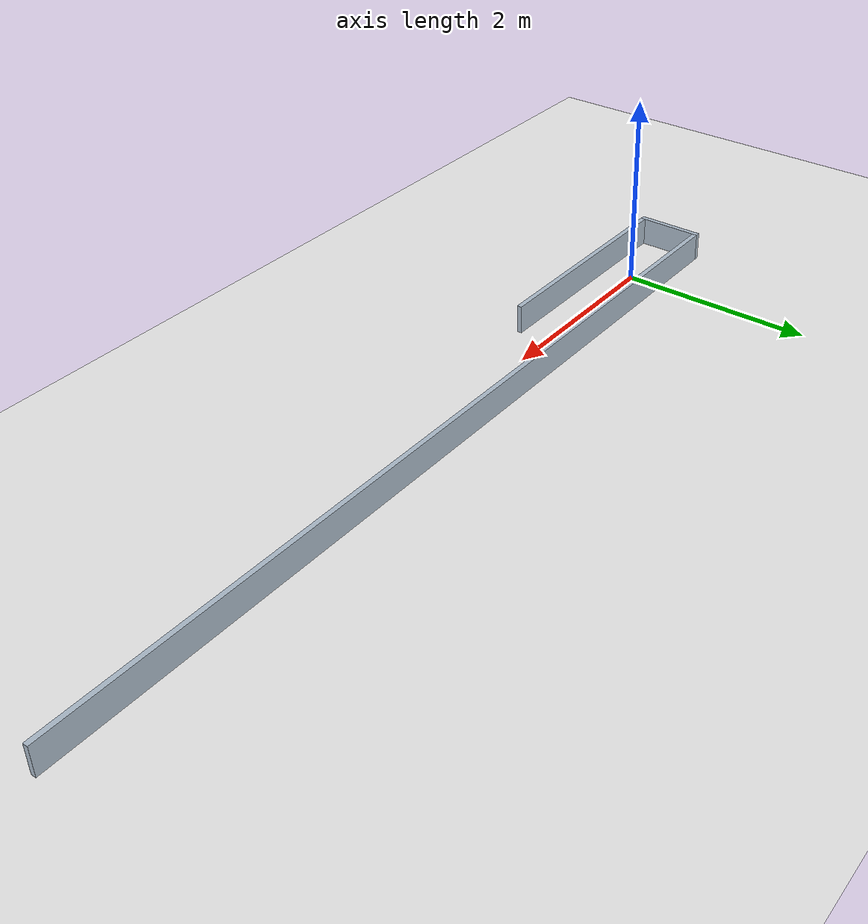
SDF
<sdf version="1.7">
  <world name="default">
    <gui fullscreen="0">
      <camera name="user_camera">
        <pose>1.5 -4 5 0 0.9 1.5708</pose>
        <view_controller>orbit</view_controller>
      </camera>
    </gui>
    <scene>
      <ambient>0.6 0.6 0.6 1</ambient>
      <background>0.75 0.82 0.9 1</background>
    </scene>
    <light name="sun" type="directional">
      <pose>0 0 20 0 0 0</pose>
      <diffuse>0.9 0.9 0.9 1</diffuse>
      <direction>-0.4 0.2 -0.9</direction>
    </light>
    <model name="ground_plane">
      <static>true</static>
      <link name="link">
        <collision name="collision">
          <geometry>
            <plane>
              <normal>0 0 1</normal>
              <size>100 100</size>
            </plane>
          </geometry>
        </collision>
        <visual name="visual">
          <geometry>
            <plane>
              <normal>0 0 1</normal>
              <size>100 100</size>
            </plane>
          </geometry>
          <material>
            <ambient>0.8 0.8 0.8 1</ambient>
            <diffuse>0.92 0.92 0.92 1</diffuse>
          </material>
        </visual>
      </link>
    </model>
    <model name="exit_corridor">
      <static>true</static>
      <link name="left_wall">
        <pose>3.625 0.325 0.15 0 0 0</pose>
        <collision name="collision">
          <geometry>
            <box>
              <size>8.75 0.05 0.30</size>
            </box>
          </geometry>
        </collision>
        <visual name="visual">
          <geometry>
            <box>
              <size>8.75 0.05 0.30</size>
            </box>
          </geometry>
          <material>
            <ambient>0.5 0.56 0.63 1</ambient>
            <diffuse>0.68 0.74 0.8 1</diffuse>
          </material>
        </visual>
      </link>
      <link name="right_wall">
        <pose>0.425 -0.325 0.15 0 0 0</pose>
        <collision name="collision">
          <geometry>
            <box>
              <size>2.35 0.05 0.30</size>
            </box>
          </geometry>
        </collision>
        <visual name="visual">
          <geometry>
            <box>
              <size>2.35 0.05 0.30</size>
            </box>
          </geometry>
          <material>
            <ambient>0.5 0.56 0.63 1</ambient>
            <diffuse>0.68 0.74 0.8 1</diffuse>
          </material>
        </visual>
      </link>
      <link name="back_wall">
        <pose>-0.775 0 0.15 0 0 0</pose>
        <collision name="collision">
          <geometry>
            <box>
              <size>0.05 0.70 0.30</size>
            </box>
          </geometry>
        </collision>
        <visual name="visual">
          <geometry>
            <box>
              <size>0.05 0.70 0.30</size>
            </box>
          </geometry>
          <material>
            <ambient>0.5 0.56 0.63 1</ambient>
            <diffuse>0.68 0.74 0.8 1</diffuse>
          </material>
        </visual>
      </link>
    </model>
  </world>
</sdf>
